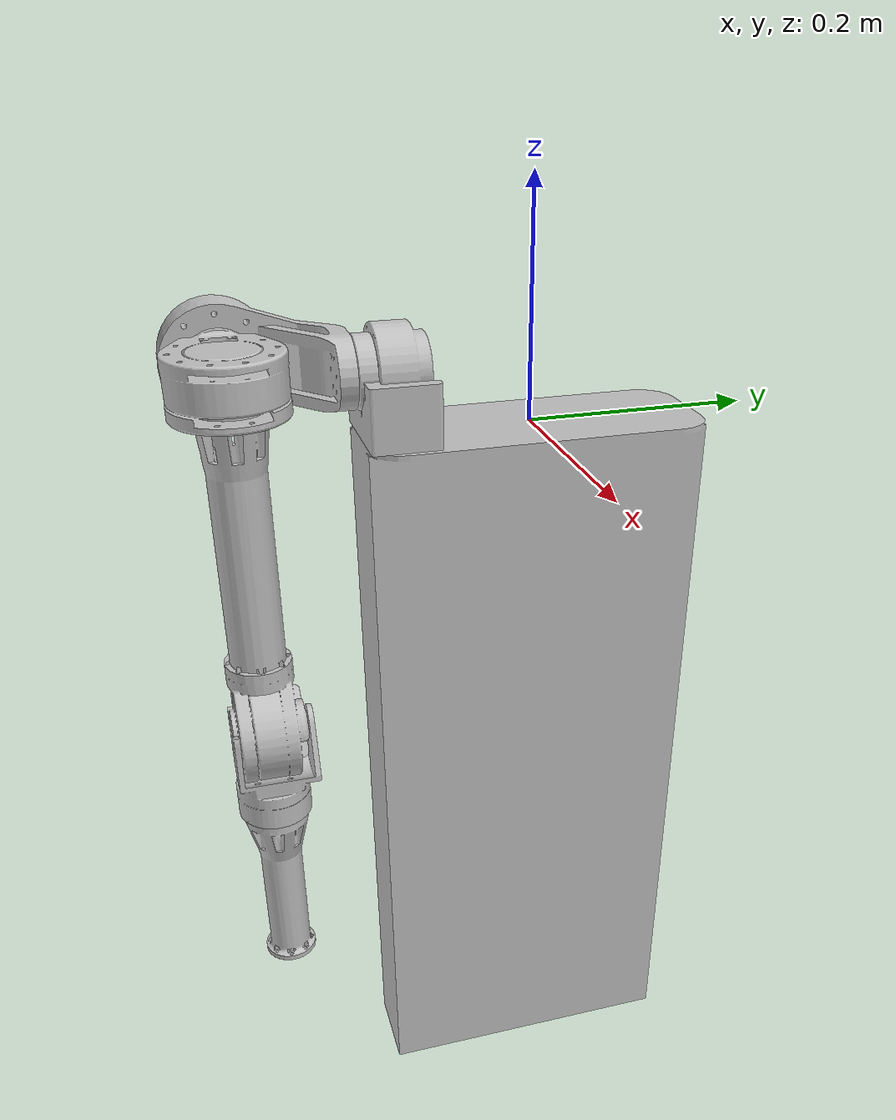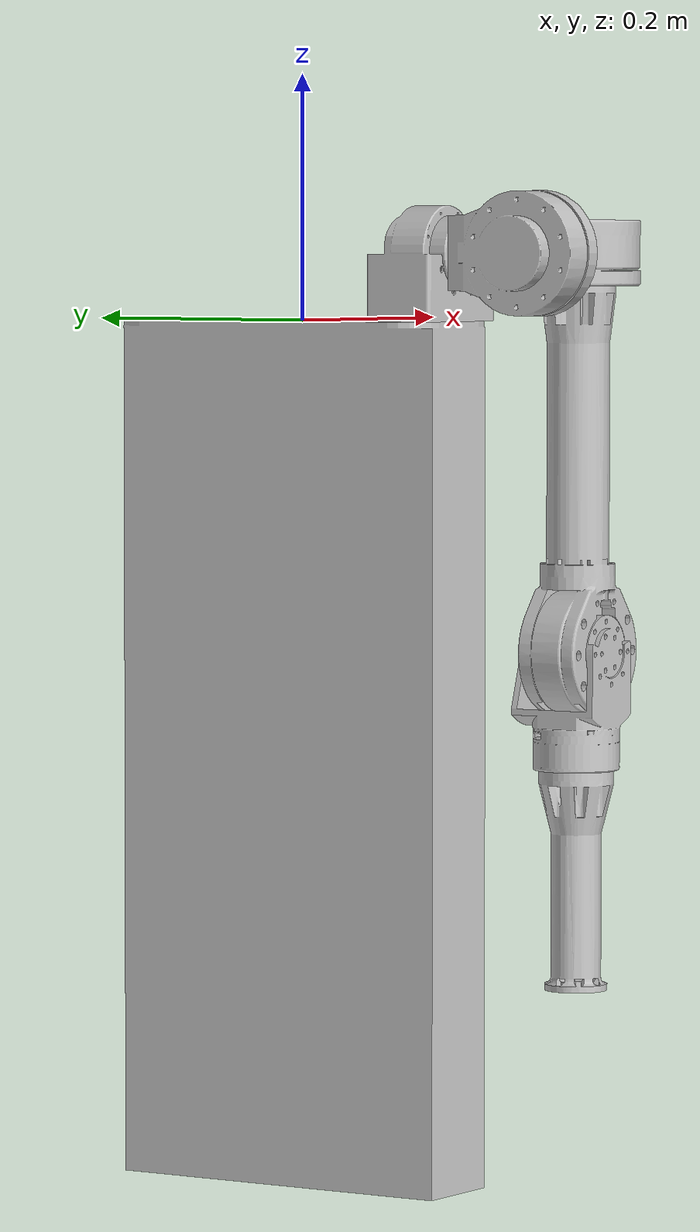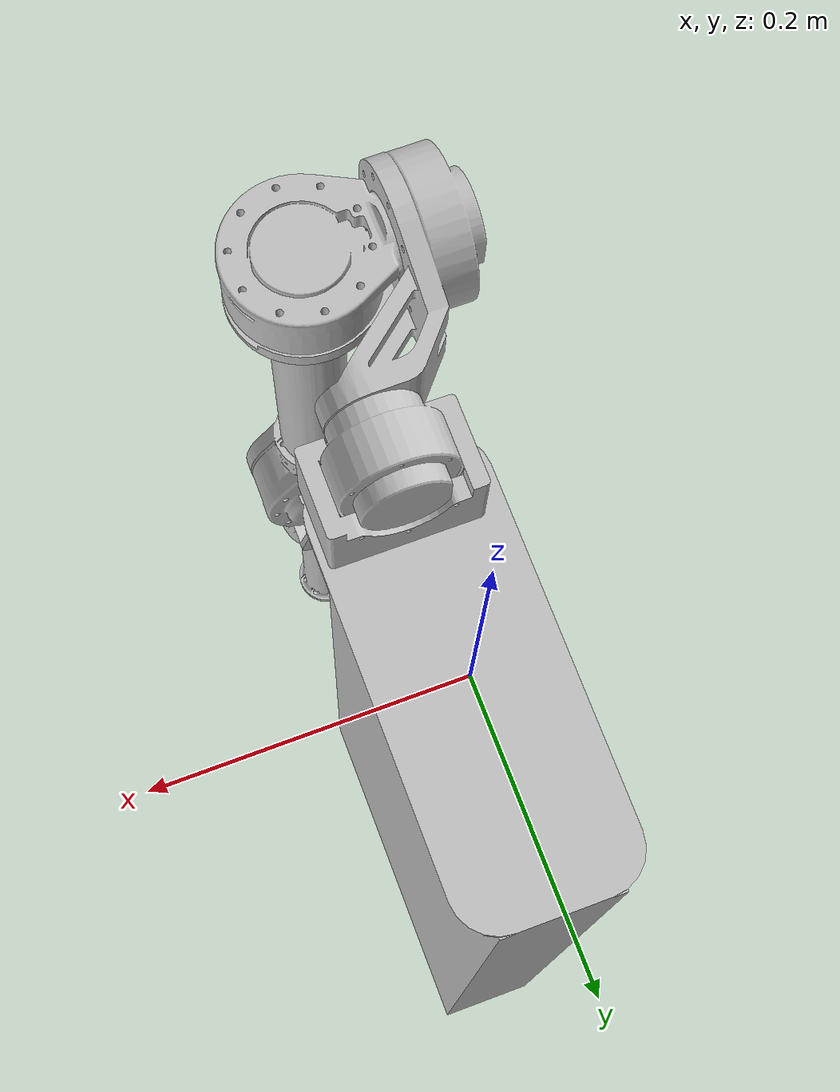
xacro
<?xml version="1.0"?>
<robot xmlns:xacro="http://www.ros.org/wiki/xacro" name="robot">
    <xacro:arg name="initial_positions_file" default="initial_positions.yaml" />

    <!-- Import robot urdf file -->
    <xacro:include filename="$(find gf3_description)/urdf/gf3.xacro" />

    <!-- Import control_xacro -->
    <xacro:include filename="robot.ros2_control.xacro" />

    <xacro:robot_ros2_control name="FakeSystem" initial_positions_file="$(arg initial_positions_file)"/>

</robot>

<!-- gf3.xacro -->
<robot xmlns:xacro="http://www.ros.org/wiki/xacro"  name="robot">

    <xacro:arg name="prefix" default="" />

    <xacro:include filename="gf3.urdf" />

    <link name="base_link"/>
    <joint name="base_link-base_link_inertia" type="fixed">
      <parent link="base_link" />
      <child link="base_link_inertia" />
      <origin xyz="0 0 0" rpy="0 0 0" />
    </joint>

    <xacro:include filename="ros2_control.xacro" />
    <xacro:rrbot_ros2_control
    name="GF3" prefix="$(arg prefix)" />

</robot>

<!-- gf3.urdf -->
<robot
  name="gf3_description">
  <link
    name="base_link_inertia">
    <inertial>
      <origin
        xyz="0 5.48172618408671E-16 -0.35134261017473"
        rpy="0 0 0" />
      <mass
        value="16.9761371669412" />
      <inertia
        ixx="0.813270923018946"
        ixy="5.27371183290001E-19"
        ixz="-9.25096626915597E-18"
        iyy="0.69516527126524"
        iyz="3.46965806395557E-17"
        izz="0.136435460379323" />
    </inertial>
    <visual>
      <origin
        xyz="0 0 0"
        rpy="0 0 0" />
      <geometry>
        <mesh
          filename="package://gf3_description/meshes/base_link.STL" />
      </geometry>
      <material
        name="">
        <color
          rgba="0.752941176470588 0.752941176470588 0.752941176470588 1" />
      </material>
    </visual>
    <collision>
      <origin
        xyz="0 0 0"
        rpy="0 0 0" />
      <geometry>
        <mesh
          filename="package://gf3_description/meshes/base_link.STL" />
      </geometry>
    </collision>
  </link>
  <link
    name="shoulder_1">
    <inertial>
      <origin
        xyz="4.15109526463731E-05 -0.00151873491296331 0.0381313948499769"
        rpy="0 0 0" />
      <mass
        value="0.428555929741292" />
      <inertia
        ixx="0.000231584726559051"
        ixy="-4.17406168537101E-07"
        ixz="7.93686580474111E-12"
        iyy="0.000409441715557106"
        iyz="1.4205824220955E-06"
        izz="0.000421632379981779" />
    </inertial>
    <visual>
      <origin
        xyz="0 0 0"
        rpy="0 0 0" />
      <geometry>
        <mesh
          filename="package://gf3_description/meshes/shoulder_1.STL" />
      </geometry>
      <material
        name="">
        <color
          rgba="0.752941176470588 0.752941176470588 0.752941176470588 1" />
      </material>
    </visual>
    <collision>
      <origin
        xyz="0 0 0"
        rpy="0 0 0" />
      <geometry>
        <mesh
          filename="package://gf3_description/meshes/shoulder_1.STL" />
      </geometry>
    </collision>
  </link>
  <joint
    name="base-shoulder_1"
    type="fixed">
    <origin
      xyz="0.00500000000000006 -0.12 0"
      rpy="0 0 0" />
    <parent
      link="base_link_inertia" />
    <child
      link="shoulder_1" />
    <axis
      xyz="0 0 0" />
  </joint>
  <link
    name="shoulder_2">
    <inertial>
      <origin
        xyz="1.29815794780441E-08 0.0677214498605619 0.0908949028025943"
        rpy="0 0 0" />
      <mass
        value="0.801625883836926" />
      <inertia
        ixx="0.000822321765649176"
        ixy="-2.33733168340494E-10"
        ixz="1.17766859921903E-10"
        iyy="0.00109491929411143"
        iyz="-0.000123179902600518"
        izz="0.00059930547133624" />
    </inertial>
    <visual>
      <origin
        xyz="0 0 0"
        rpy="0 0 0" />
      <geometry>
        <mesh
          filename="package://gf3_description/meshes/shoulder_2.STL" />
      </geometry>
      <material
        name="">
        <color
          rgba="0.752941176470588 0.752941176470588 0.752941176470588 1" />
      </material>
    </visual>
    <collision>
      <origin
        xyz="0 0 0"
        rpy="0 0 0" />
      <geometry>
        <mesh
          filename="package://gf3_description/meshes/shoulder_2.STL" />
      </geometry>
    </collision>
  </link>
  <joint
    name="shoulder_1-2"
    type="revolute">
    <origin
      xyz="0 -0.0335000000000007 0.0550000000000001"
      rpy="1.5707963267949 -1.5707963267949 0" />
    <parent
      link="shoulder_1" />
    <child
      link="shoulder_2" />
    <axis
      xyz="0 0 1" />
    <limit
      lower="-3.1416"
      upper="3.1416"
      effort="0"
      velocity="0" />
  </joint>
  <link
    name="shoulder_3">
    <inertial>
      <origin
        xyz="-0.00250797379435397 -8.9291262828084E-08 0.060791515377128"
        rpy="0 0 0" />
      <mass
        value="0.78185390173963" />
      <inertia
        ixx="0.000942899609429054"
        ixy="-9.96737983038072E-10"
        ixz="9.65405681179317E-07"
        iyy="0.000612349518620666"
        iyz="-2.07329960000374E-09"
        izz="0.000566930201617026" />
    </inertial>
    <visual>
      <origin
        xyz="0 0 0"
        rpy="0 0 0" />
      <geometry>
        <mesh
          filename="package://gf3_description/meshes/shoulder_3.STL" />
      </geometry>
      <material
        name="">
        <color
          rgba="0.752941176470588 0.752941176470588 0.752941176470588 1" />
      </material>
    </visual>
    <collision>
      <origin
        xyz="0 0 0"
        rpy="0 0 0" />
      <geometry>
        <mesh
          filename="package://gf3_description/meshes/shoulder_3.STL" />
      </geometry>
    </collision>
  </link>
  <joint
    name="shoulder_2-3"
    type="revolute">
    <origin
      xyz="0 0.0575000000000003 0.100499999999688"
      rpy="-1.5707963267949 0 3.14159265358979" />
    <parent
      link="shoulder_2" />
    <child
      link="shoulder_3" />
    <axis
      xyz="0 0 1" />
    <limit
      lower="-0.5236"
      upper="1.5708"
      effort="0"
      velocity="0" />
  </joint>
  <link
    name="uppper_arm">
    <inertial>
      <origin
        xyz="3.03470961214303E-05 -0.00260329348431185 0.265249566717338"
        rpy="0 0 0" />
      <mass
        value="0.94446311895432" />
      <inertia
        ixx="0.00141756847846554"
        ixy="4.80110751423539E-07"
        ixz="6.17059833294479E-07"
        iyy="0.00173651913261035"
        iyz="8.56852305986466E-06"
        izz="0.00065896347505381" />
    </inertial>
    <visual>
      <origin
        xyz="0 0 0"
        rpy="0 0 0" />
      <geometry>
        <mesh
          filename="package://gf3_description/meshes/uppper_arm.STL" />
      </geometry>
      <material
        name="">
        <color
          rgba="0.752941176470588 0.752941176470588 0.752941176470588 1" />
      </material>
    </visual>
    <collision>
      <origin
        xyz="0 0 0"
        rpy="0 0 0" />
      <geometry>
        <mesh
          filename="package://gf3_description/meshes/uppper_arm.STL" />
      </geometry>
    </collision>
  </link>
  <joint
    name="shoulder_3-upper"
    type="revolute">
    <origin
      xyz="0.0154999999999974 0 0.0644999999998069"
      rpy="1.5707963268061 -1.57076412595444 1.57079632678369" />
    <parent
      link="shoulder_3" />
    <child
      link="uppper_arm" />
    <axis
      xyz="0 0 1" />
    <limit
      lower="-1.5708"
      upper="1.5708"
      effort="0"
      velocity="0" />
  </joint>
  <link
    name="elbow">
    <inertial>
      <origin
        xyz="7.53810226428175E-06 0.0397326813909367 -0.0130566041120146"
        rpy="0 0 0" />
      <mass
        value="0.126561920168368" />
      <inertia
        ixx="8.90363606192493E-05"
        ixy="-1.84156669835628E-09"
        ixz="-9.16169940384802E-08"
        iyy="9.71842137884586E-05"
        iyz="-4.73289234651734E-06"
        izz="6.65282396157217E-05" />
    </inertial>
    <visual>
      <origin
        xyz="0 0 0"
        rpy="0 0 0" />
      <geometry>
        <mesh
          filename="package://gf3_description/meshes/elbow.STL" />
      </geometry>
      <material
        name="">
        <color
          rgba="0.752941176470588 0.752941176470588 0.752941176470588 1" />
      </material>
    </visual>
    <collision>
      <origin
        xyz="0 0 0"
        rpy="0 0 0" />
      <geometry>
        <mesh
          filename="package://gf3_description/meshes/elbow.STL" />
      </geometry>
    </collision>
  </link>
  <joint
    name="upper-elbow"
    type="revolute">
    <origin
      xyz="0 0.0154999999919611 0.301500000000314"
      rpy="1.5707963267949 0 -3.14156045274864" />
    <parent
      link="uppper_arm" />
    <child
      link="elbow" />
    <axis
      xyz="0 0 1" />
    <limit
      lower="-1.5708"
      upper="1.5708"
      effort="0"
      velocity="0" />
  </joint>
  <link
    name="lower">
    <inertial>
      <origin
        xyz="0 0 0.0604608993841892"
        rpy="0 0 0" />
      <mass
        value="0.0736301593510934" />
      <inertia
        ixx="0.000212385916416804"
        ixy="-2.39938196175855E-20"
        ixz="3.58395744306094E-19"
        iyy="0.000212385916416804"
        iyz="2.81151185090475E-19"
        izz="3.3410274855104E-05" />
    </inertial>
    <visual>
      <origin
        xyz="0 0 0"
        rpy="0 0 0" />
      <geometry>
        <mesh
          filename="package://gf3_description/meshes/lower.STL" />
      </geometry>
      <material
        name="">
        <color
          rgba="0.752941176470588 0.752941176470588 0.752941176470588 1" />
      </material>
    </visual>
    <collision>
      <origin
        xyz="0 0 0"
        rpy="0 0 0" />
      <geometry>
        <mesh
          filename="package://gf3_description/meshes/lower.STL" />
      </geometry>
    </collision>
  </link>
  <joint
    name="elbow-lower"
    type="revolute">
    <origin
      xyz="0 0.0943999999999983 -0.0164999999999973"
      rpy="-1.5707963267949 0 0" />
    <parent
      link="elbow" />
    <child
      link="lower" />
    <axis
      xyz="0 0 -1" />
    <limit
      lower="-1.5708"
      upper="1.5708"
      effort="0"
      velocity="0" />
  </joint>
</robot>
